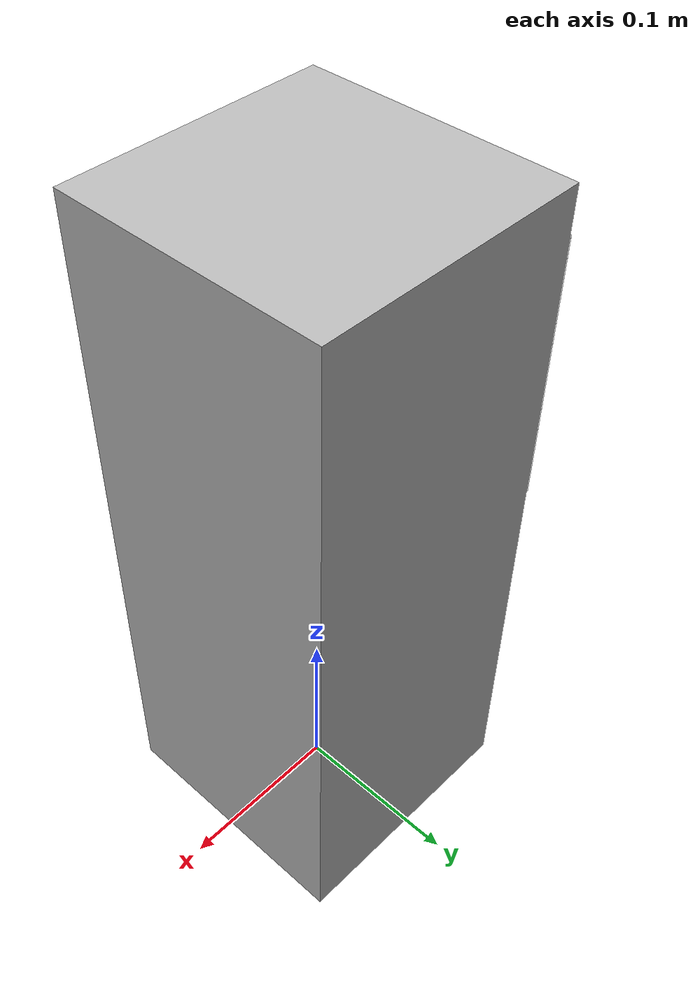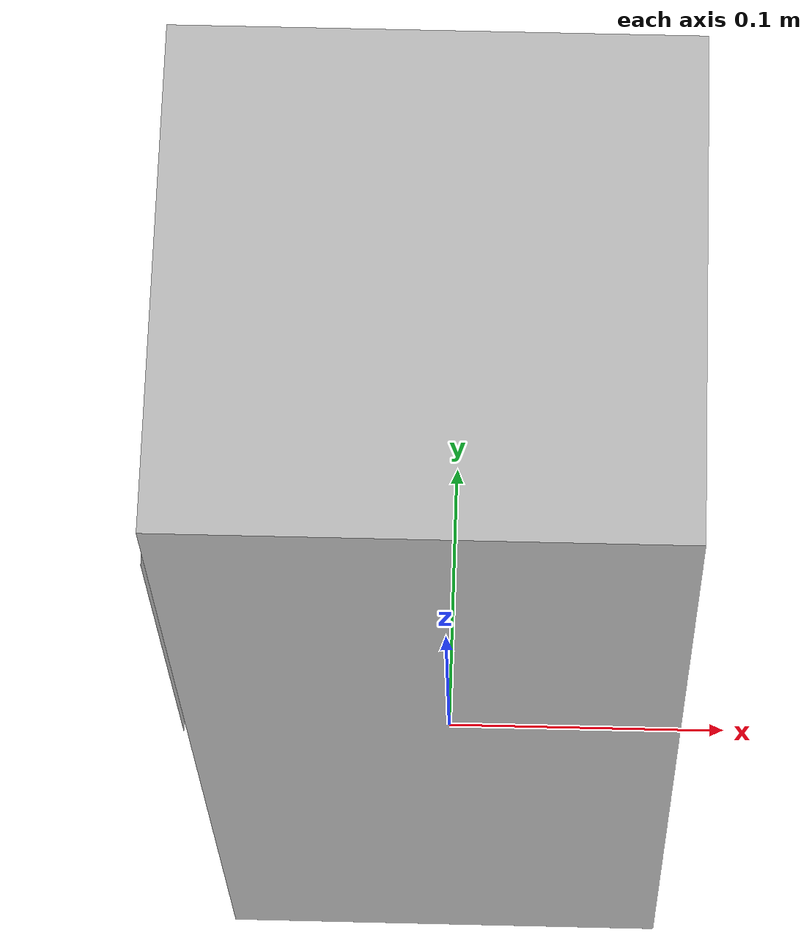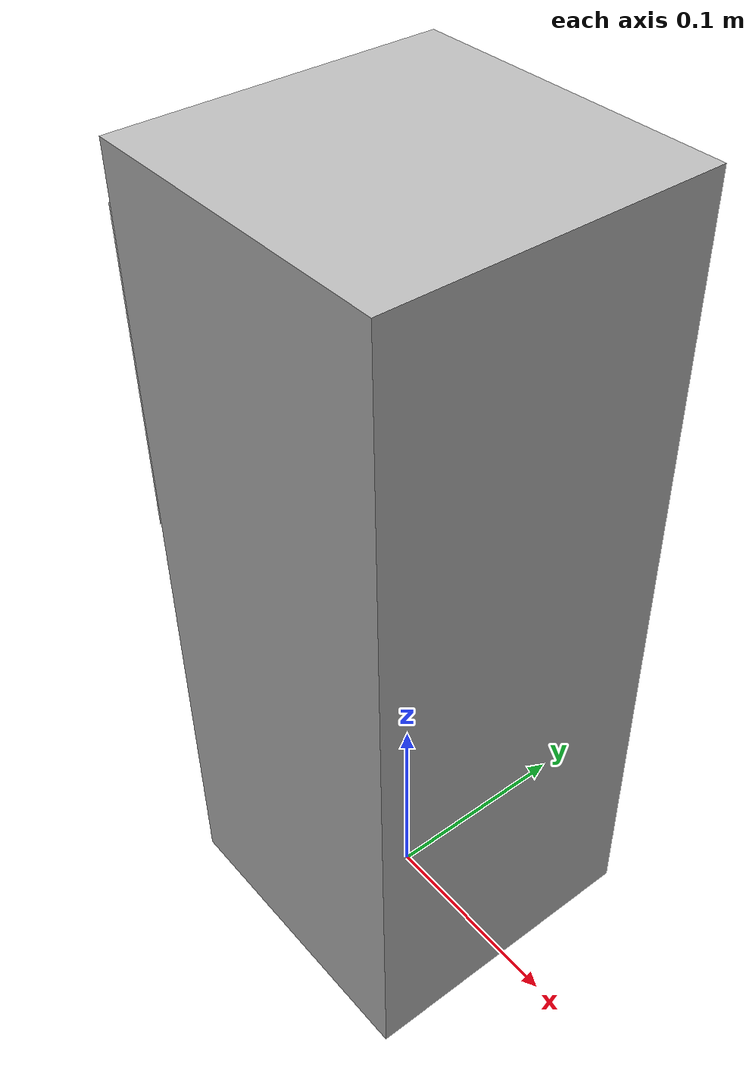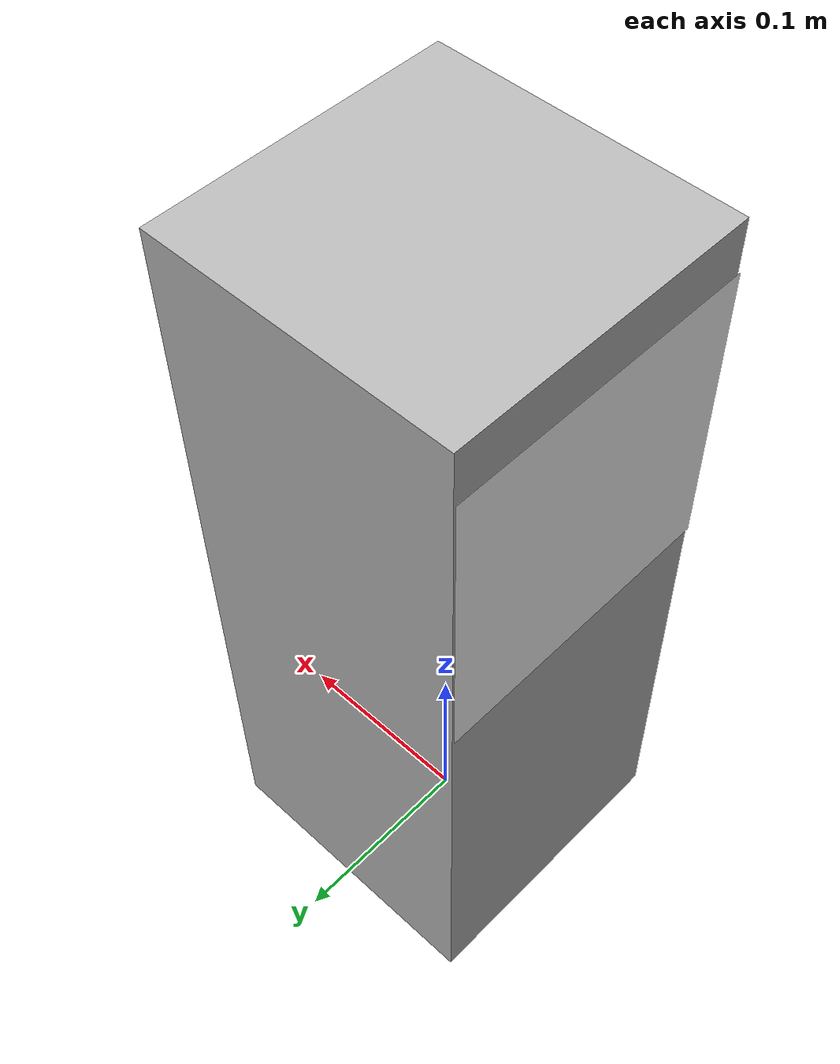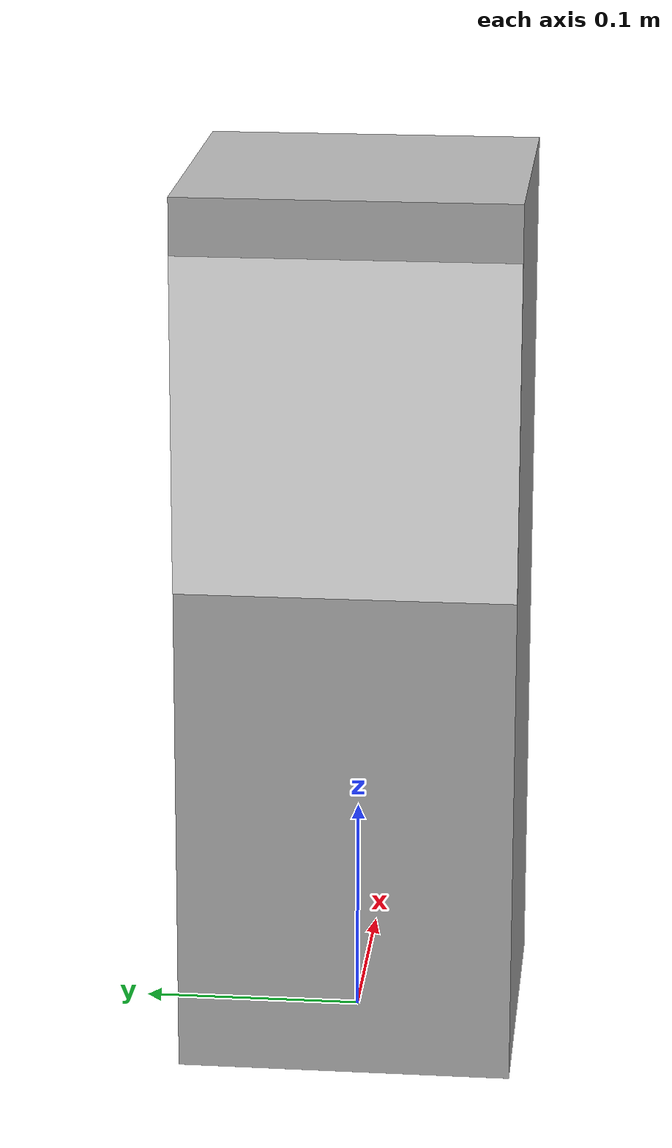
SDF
<?xml version='1.0'?>
<sdf version="1.4">
	<model name="aruco_pillar">
	<pose>0 0 0 0 0 0</pose>
	<static>true</static>

		<link name="pillar">
			<pose>0 0 0.2 0 0 0</pose>
			<inertial>
				<mass>1.0</mass>
				<inertia> <!-- inertias are tricky to compute -->
					<!-- http://gazebosim.org/tutorials?tut=inertia&cat=build_robot -->
					<ixx>0.083</ixx>       <!-- for a box: ixx = 0.083 * mass * (y*y + z*z) -->
					<ixy>0.0</ixy>         <!-- for a box: ixy = 0 -->
					<ixz>0.0</ixz>         <!-- for a box: ixz = 0 -->
					<iyy>0.083</iyy>       <!-- for a box: iyy = 0.083 * mass * (x*x + z*z) -->
					<iyz>0.0</iyz>         <!-- for a box: iyz = 0 -->
					<izz>0.083</izz>       <!-- for a box: izz = 0.083 * mass * (x*x + y*y) -->
				</inertia>
			</inertial>
			<collision name="collision">
				<geometry>
				  <box>
					<size>0.15 0.15 0.40</size>
				  </box>
				</geometry>

			</collision>
			<visual name="visual">
				<geometry>
				  <box>
					<size>0.15 0.15 0.40</size>
				  </box>
				</geometry>
			</visual>
		</link>

		<link name="aruco_marker">
			<pose>-0.076 0 0.30 0 0 0</pose>
			<inertial>
				<mass>0.1</mass>
				<inertia> <!-- inertias are tricky to compute -->
					<!-- http://gazebosim.org/tutorials?tut=inertia&cat=build_robot -->
					<ixx>0.083</ixx>       <!-- for a box: ixx = 0.083 * mass * (y*y + z*z) -->
					<ixy>0.0</ixy>         <!-- for a box: ixy = 0 -->
					<ixz>0.0</ixz>         <!-- for a box: ixz = 0 -->
					<iyy>0.083</iyy>       <!-- for a box: iyy = 0.083 * mass * (x*x + z*z) -->
					<iyz>0.0</iyz>         <!-- for a box: iyz = 0 -->
					<izz>0.083</izz>       <!-- for a box: izz = 0.083 * mass * (x*x + y*y) -->
				</inertia>
			</inertial>
			<collision name="collision">
				<geometry>
				  <box>
					<size>0.15 0.15 1e-5</size>
				  </box>
				</geometry>
				<pose>0 0 0 0 -1.5708 0</pose>
			</collision>
			<visual name="visual">
				<geometry>
				  <box>
					<size>0.15 0.15 1e-5</size>
				  </box>
				</geometry>
				<pose>0 0 0 0 -1.5708 0</pose>
				<material>
					<script>
						<uri>model://aruco_pillar/materials/scripts</uri>
						<uri>model://aruco_pillar/materials/textures</uri>
						<name>aruco_pillar_0/Diffuse</name>
					</script>
					<ambient>1 1 1 1</ambient>
					<diffuse>1 1 1 1</diffuse>
					<specular>0 0 0 1</specular>
					<emissive>1 1 1 0</emissive>
					<shader type='vertex'>
						<normal_map>__default__</normal_map>
					</shader>
				</material>
			</visual>
		</link>
	</model>
</sdf>
